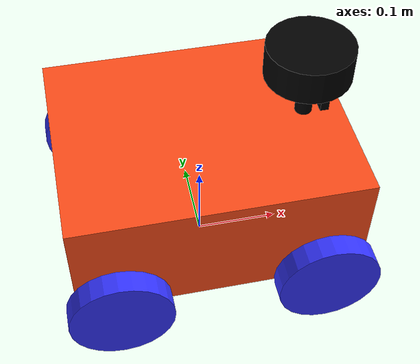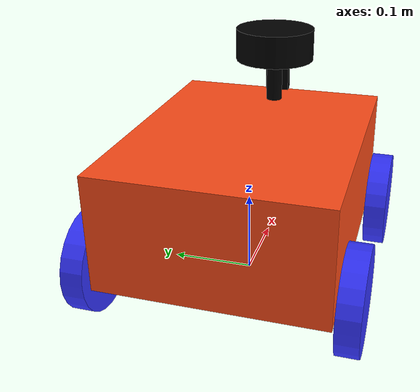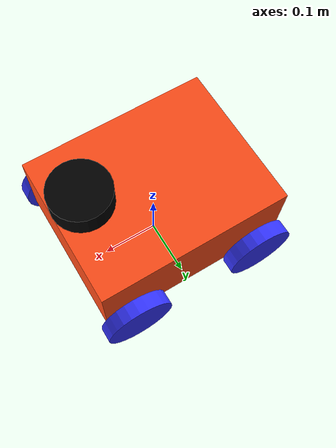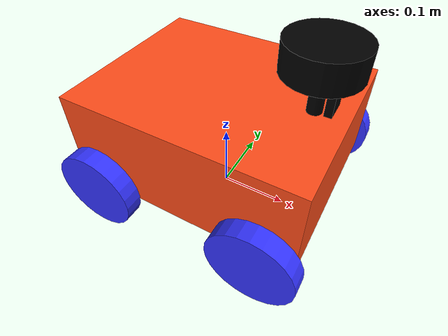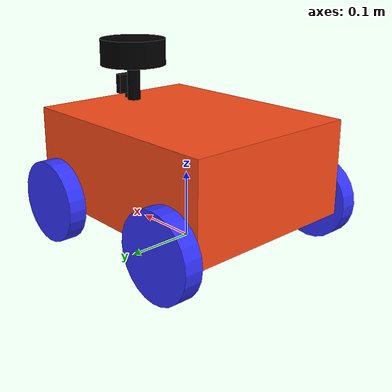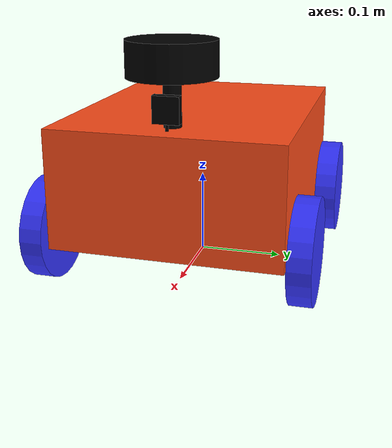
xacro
<?xml version="1.0"?>
<robot xmlns:xacro="http://www.ros.org/wiki/xacro"  name="my_robot">

    <xacro:include filename="robot.xacro"  />

    <xacro:include filename="lidar.xacro" />
    <xacro:include filename="camera.xacro" />

     <xacro:include filename="gps.xacro" />

     <xacro:include filename="odom.xacro" />

    <xacro:include filename="controle_gazebo.xacro" />
     <!-- Imu -->
     <xacro:include filename='imu.xacro'/>

</robot>

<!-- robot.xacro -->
<robot xmlns:xacro="http://www.ros.org/wiki/xacro">

    <xacro:include filename="inertial_macros.xacro" />

    <!-- CHASSIS  CONF-->
    <xacro:property name="chassis_length" value="0.335"/>
    <xacro:property name="chassis_width" value="0.265"/>
    <xacro:property name="chassis_height" value="0.138"/>
    <xacro:property name="chassis_mass" value="1.5"/>

    <!--  ROUES CONF -->
    <xacro:property name="wheel_radius" value="0.06"/>
    <xacro:property name="wheel_thickness" value="0.026"/>
    <xacro:property name="wheel_mass" value="0.09"/>
    <xacro:property name="wheel_offset_z" value="0.01"/>

    <!-- POSITIONS DES ROUES  -->
    <xacro:property name="wheel_offset_x_front" value="0.120"/>
    <xacro:property name="wheel_offset_x_rear" value="-0.120"/>
    <xacro:property name="wheel_offset_y" value="0.1485"/>

    <material name="white">
        <color rgba="1 1 1 1" />
    </material>

    <material name="orange">
        <color rgba="1 0.3 0.1 1"/>
    </material>

    <material name="blue">
        <color rgba="0.2 0.2 1 1"/>
    </material>

    <material name="black">
        <color rgba="0 0 0 1"/>
    </material>

    <material name="red">
        <color rgba="1 0 0 1"/>
    </material>

    <link name="base_footprint">
    </link>

    <joint name="base_footprint_joint" type="fixed">
        <parent link="base_footprint"/>
        <child link="base_link"/>
        <origin xyz="0 0 ${wheel_radius}" rpy="0 0 0"/>
    </joint>

    <link name="base_link">
    </link>

    <joint name="chassis_joint" type="fixed">
        <parent link="base_link"/>
        <child link="chassis"/>
        <origin xyz="0 0 ${-wheel_offset_z}"/>
    </joint>

    <link name="chassis">
        <visual>
            <origin xyz="0 0 ${chassis_height/2}"/>
            <geometry>
                <box size="${chassis_length} ${chassis_width} ${chassis_height}"/>
            </geometry>
            <material name="orange"/>
        </visual>
        <collision>
            <origin xyz="0 0 ${chassis_height/2}"/>
            <geometry>
                <box size="${chassis_length} ${chassis_width} ${chassis_height}"/>
            </geometry>
        </collision>
        <xacro:inertial_box mass="${chassis_mass}" x="${chassis_length}" y="${chassis_width}" z="${chassis_height}">
            <origin xyz="0 0 ${chassis_height/2}" rpy="0 0 0"/>
        </xacro:inertial_box>
    </link>

    <!-- MACRO POUR CRÉER UNE ROUE -->
    <xacro:macro name="wheel" params="prefix x_pos y_pos">
        <joint name="${prefix}_wheel_joint" type="continuous">
            <parent link="base_link"/>
            <child link="${prefix}_wheel"/>
            <origin xyz="${x_pos} ${y_pos} 0" rpy="${-pi/2} 0 0" />
            <axis xyz="0 0 1"/>
        </joint>

        <link name="${prefix}_wheel">
            <visual>
                <geometry>
                    <cylinder radius="${wheel_radius}" length="${wheel_thickness}"/>
                </geometry>
                <material name="blue"/>
            </visual>
            <collision>
                <geometry>
                    <sphere radius="${wheel_radius}"/>
                </geometry>
            </collision>
            <xacro:inertial_cylinder mass="${wheel_mass}" length="${wheel_thickness}" radius="${wheel_radius}">
                <origin xyz="0 0 0" rpy="0 0 0"/>
            </xacro:inertial_cylinder>
        </link>
    </xacro:macro>

    <!-- Roues avant -->
    <xacro:wheel prefix="front_left" x_pos="${wheel_offset_x_front}" y_pos="${wheel_offset_y}"/>
    <xacro:wheel prefix="front_right" x_pos="${wheel_offset_x_front}" y_pos="${-wheel_offset_y}"/>

    <!-- Roues arrière -->
    <xacro:wheel prefix="rear_left" x_pos="${wheel_offset_x_rear}" y_pos="${wheel_offset_y}"/>
    <xacro:wheel prefix="rear_right" x_pos="${wheel_offset_x_rear}" y_pos="${-wheel_offset_y}"/>

</robot>

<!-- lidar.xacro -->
<robot xmlns:xacro="http://www.ros.org/wiki/xacro" >

    <joint name="laser_joint" type="fixed">
        <parent link="chassis"/>
        <child link="laser_frame"/>
        <origin xyz="0.122 0 0.212" rpy="0 0 0"/>
    </joint>

    <link name="laser_frame">
        <visual>
            <geometry>
                <cylinder radius="0.05" length="0.04"/>
            </geometry>
            <material name="black"/>
        </visual>
        <visual>
            <origin xyz="0 0 -0.05"/>
            <geometry>
                <cylinder radius="0.01" length="0.1"/>
            </geometry>
            <material name="black"/>
        </visual>
        <collision>
            <geometry>
                <cylinder radius="0.05" length="0.04"/>
            </geometry>
        </collision>
        <xacro:inertial_cylinder mass="0.1" length="0.04" radius="0.05">
            <origin xyz="0 0 0" rpy="0 0 0"/>
        </xacro:inertial_cylinder>
    </link>

    <gazebo reference="laser_frame">
        <material>Gazebo/Black</material>

        <sensor name='laser' type='gpu_lidar'>
            <pose>0 0 0 0 0 0</pose>
            <topic>/scan</topic>
            <gz_frame_id>laser_frame</gz_frame_id>
            <update_rate>10</update_rate>
            <lidar>
              <scan>
                <horizontal>
                  <samples>640</samples>
                  <resolution>1</resolution>
                  <min_angle>-3.14</min_angle>
                  <max_angle>3.14</max_angle>
                </horizontal>
                <vertical>
                  <samples>1</samples>
                  <resolution>1</resolution>
                  <min_angle>0.0</min_angle>
                  <max_angle>0.0</max_angle>
                </vertical>
              </scan>
              <range>
                <min>0.08</min>
                <max>10.0</max>
                <resolution>0.01</resolution>
              </range>
            </lidar>
            <visualize>true</visualize>
          </sensor>
    </gazebo>

</robot>

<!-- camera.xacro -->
<robot xmlns:xacro="http://www.ros.org/wiki/xacro" >

    <joint name="camera_joint" type="fixed">
        <parent link="chassis"/>
        <child link="camera_link"/>
        <origin xyz="0.142 0 0.161" rpy="0 0 0"/>
    </joint>

    <link name="camera_link">
        <visual>
            <geometry>
                <box size="0.010 0.03 0.03"/>
            </geometry>
            <material name="black"/>
        </visual>
        <visual>
            <origin xyz="0 0 -0.05"/>
            <geometry>
                <cylinder radius="0.002" length="0.1"/>
            </geometry>
            <material name="black"/>
        </visual>
    </link>

    <joint name="camera_optical_joint" type="fixed">
        <parent link="camera_link"/>
        <child link="camera_link_optical"/>
        <origin xyz="0 0 0" rpy="${-pi/2} 0 ${-pi/2}"/>
    </joint>

    <link name="camera_link_optical"></link>

    <gazebo reference="camera_link">
        <material>Gazebo/Black</material>

        <sensor name="rgbd_camera" type="rgbd_camera">
            <update_rate>20</update_rate>
            <topic>/image/image_raw</topic>
            <gz_frame_id>camera_link_optical</gz_frame_id>

            <camera>
                <horizontal_fov>1.089</horizontal_fov>
                <image>
                    <width>640</width>
                    <height>480</height>
                    <format>RGB_INT8</format>
                </image>
                <clip>
                    <near>0.05</near>
                    <far>10.0</far>
                </clip>

            </camera>

            <depth_camera>
                <clip>
                    <near>0.05</near>
                    <far>10.0</far>
                </clip>
                <noise>
                    <type>gaussian</type>
                    <mean>0.0</mean>
                    <stddev>0.001</stddev>
                </noise>
            </depth_camera>

            <always_on>1</always_on>
            <visualize>true</visualize>
        </sensor>
    </gazebo>

</robot>

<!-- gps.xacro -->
<robot xmlns:xacro="http://www.ros.org/wiki/xacro">

    <joint name="navsat_joint" type="fixed">
        <origin xyz="0 0 0" rpy="0 0 0" />
        <parent link="chassis"/>
        <child link="navsat_link" />
    </joint>

    <link name="navsat_link">
    </link>

    <gazebo reference="navsat_link">
        <sensor name="navsat" type="navsat">
        <always_on>1</always_on>
        <update_rate>1</update_rate>
        <topic>navsat</topic>
        <frame_id>navsat_link</frame_id>
        </sensor>
    </gazebo>
</robot>

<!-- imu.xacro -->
<robot xmlns:xacro="http://www.ros.org/wiki/xacro" >

<joint name="imu_joint" type="fixed">
    <parent link="chassis"/>
    <child link="imu_link"/>
    <origin xyz="0 0 ${chassis_height/2}" rpy="0 0 0"/>
  </joint>

 <link name="imu_link">

</link>

<gazebo reference="imu_link">

  <sensor name="imu_sensor" type="imu">

    <always_on>true</always_on>
    <update_rate>200</update_rate>
    <gz_frame_id>imu_link</gz_frame_id>

    <topic>/imu</topic>

    <imu>

      <orientation_reference_frame parent_frame="imu_link" custom_rpy="0 0 0"/>

      <angular_velocity>
        <x>
          <noise type="gaussian">
            <mean>0.0</mean>
            <stddev>2e-4</stddev>
          </noise>
        </x>
        <y>
          <noise type="gaussian">
            <mean>0.0</mean>
            <stddev>2e-4</stddev>
          </noise>
        </y>
        <z>
          <noise type="gaussian">
            <mean>0.0</mean>
            <stddev>2e-4</stddev>
          </noise>
        </z>
      </angular_velocity>

      <linear_acceleration>
        <x>
          <noise type="gaussian">
            <mean>0.0</mean>
            <stddev>1.7e-2</stddev>
          </noise>
        </x>
        <y>
          <noise type="gaussian">
            <mean>0.0</mean>
            <stddev>1.7e-2</stddev>
          </noise>
        </y>
        <z>
          <noise type="gaussian">
            <mean>0.0</mean>
            <stddev>1.7e-2</stddev>
          </noise>
        </z>
      </linear_acceleration>

        <orientation_enabled>true</orientation_enabled>
      </imu>

    </sensor>
  </gazebo>

</robot>
